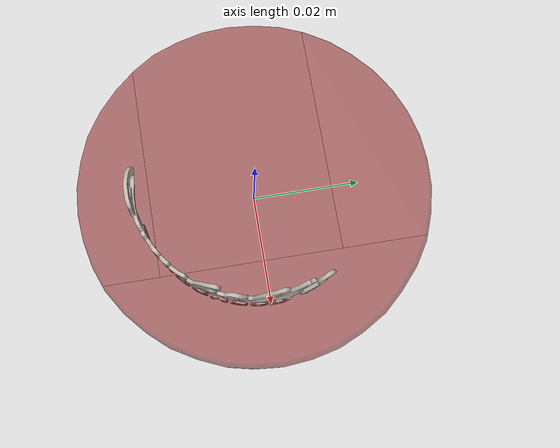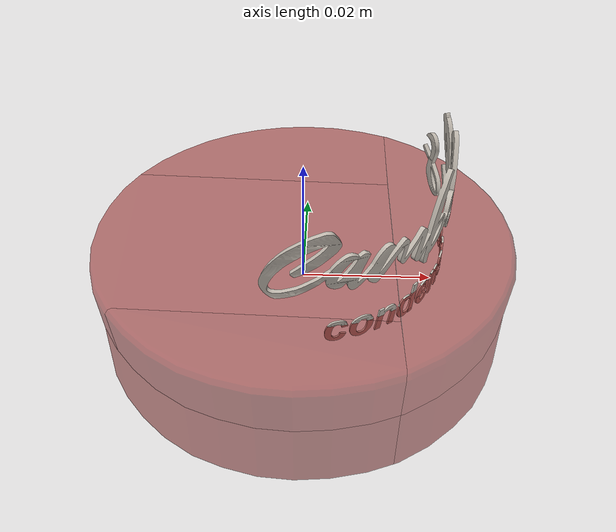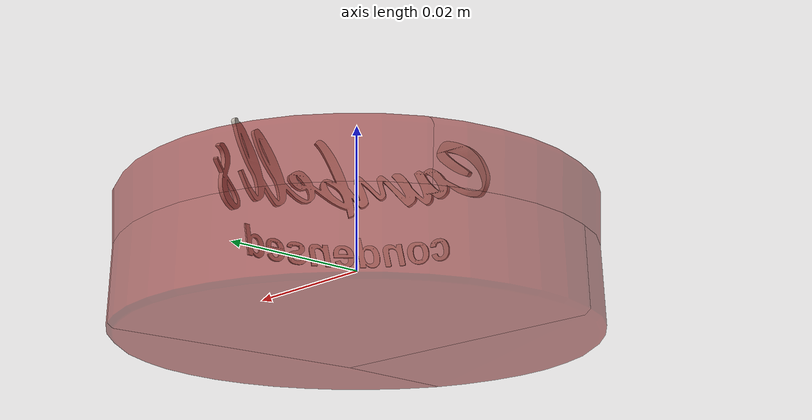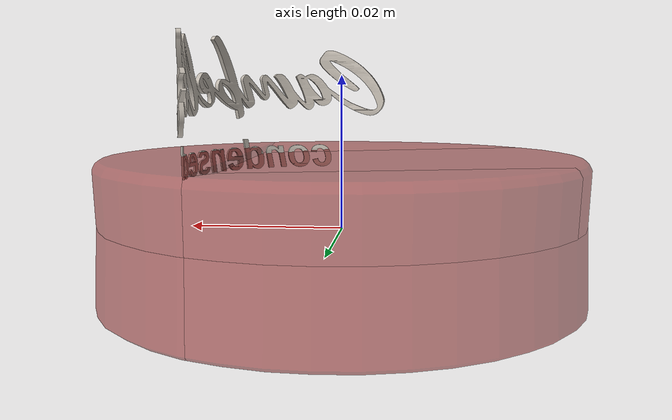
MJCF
<?xml version='1.0' encoding='utf-8'?>
<mujoco model="canned_food_9">
  <asset>
    <mesh file="visual/model_normalized_0.obj" name="model_normalized_0_vis" scale="0.06299999999999997 0.06299999999999997 0.06299999999999997" refquat="1.0 0.0 0.0 0.0" />
    <texture type="2d" name="image0" file="visual/image0.png" />
    <material name="ConserveThon" texture="image0" specular="0.5" shininess="0.038399988999999995" />
    <mesh file="collision/collision_mesh_collision_0.obj" name="canned_collision_mesh_0" scale="0.06299999999999997 0.06299999999999997 0.06299999999999997" refquat="1.0 0.0 0.0 0.0" />
    <mesh file="collision/collision_mesh_collision_1.obj" name="canned_collision_mesh_1" scale="0.06299999999999997 0.06299999999999997 0.06299999999999997" refquat="1.0 0.0 0.0 0.0" />
    <mesh file="collision/collision_mesh_collision_2.obj" name="canned_collision_mesh_2" scale="0.06299999999999997 0.06299999999999997 0.06299999999999997" refquat="1.0 0.0 0.0 0.0" />
    <mesh file="collision/collision_mesh_collision_3.obj" name="canned_collision_mesh_3" scale="0.06299999999999997 0.06299999999999997 0.06299999999999997" refquat="1.0 0.0 0.0 0.0" />
    <mesh file="collision/collision_mesh_collision_4.obj" name="canned_collision_mesh_4" scale="0.06299999999999997 0.06299999999999997 0.06299999999999997" refquat="1.0 0.0 0.0 0.0" />
    <mesh file="collision/collision_mesh_collision_5.obj" name="canned_collision_mesh_5" scale="0.06299999999999997 0.06299999999999997 0.06299999999999997" refquat="1.0 0.0 0.0 0.0" />
    <mesh file="collision/collision_mesh_collision_6.obj" name="canned_collision_mesh_6" scale="0.06299999999999997 0.06299999999999997 0.06299999999999997" refquat="1.0 0.0 0.0 0.0" />
  </asset>
  <default>
    <default class="region">
      <geom group="1" conaffinity="0" contype="0" rgba="0 1 0 0" mass="0" />
    </default>
    <default class="collision">
      <geom group="0" rgba="0.5 0 0 0.5" density="4907.762786905" />
    </default>
  </default>
  <worldbody>
    <body>
      <body name="object">
        <geom solimp="0.998 0.998 0.001" solref="0.001 1" density="490.776278690" friction="0.95 0.3 0.1" type="mesh" mesh="model_normalized_0_vis" conaffinity="0" contype="0" group="1" material="ConserveThon" />
        <geom class="region" name="reg_bbox" type="box" pos="0.0 -8.832600000002185e-07 6.300000005426961e-10" size="0.031499988659999985 0.031499116739999986 0.009492968519999997" />
        <geom mesh="canned_collision_mesh_0" type="mesh" class="collision" />
        <geom mesh="canned_collision_mesh_1" type="mesh" class="collision" />
        <geom mesh="canned_collision_mesh_2" type="mesh" class="collision" />
        <geom mesh="canned_collision_mesh_3" type="mesh" class="collision" />
        <geom mesh="canned_collision_mesh_4" type="mesh" class="collision" />
        <geom mesh="canned_collision_mesh_5" type="mesh" class="collision" />
        <geom mesh="canned_collision_mesh_6" type="mesh" class="collision" />
      </body>
    </body>
  </worldbody>
</mujoco>
